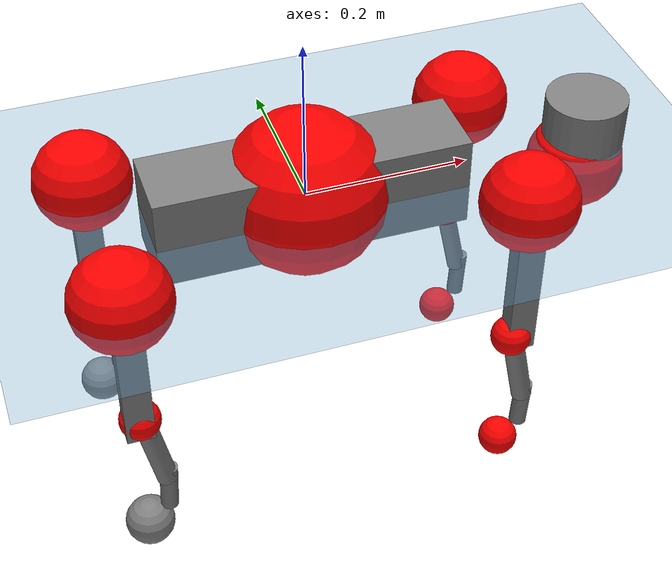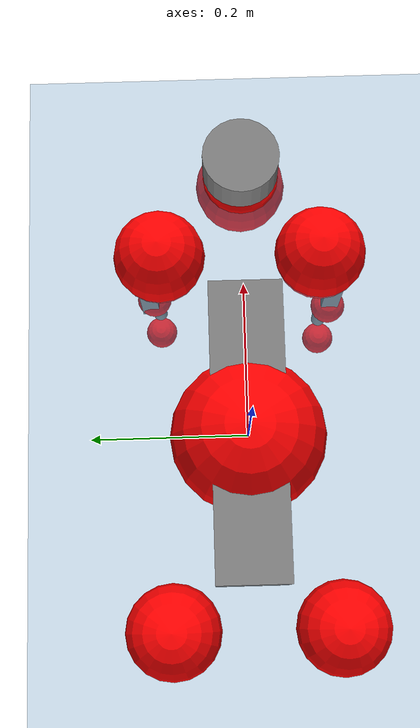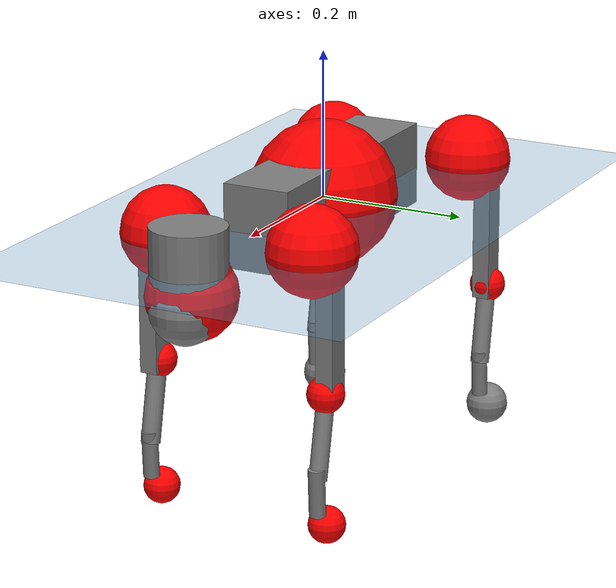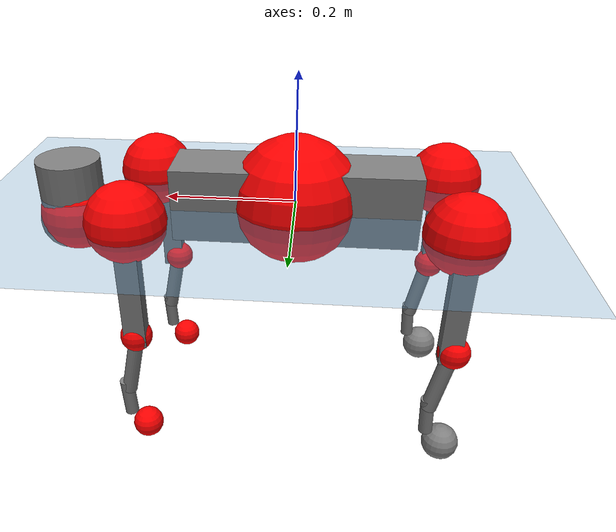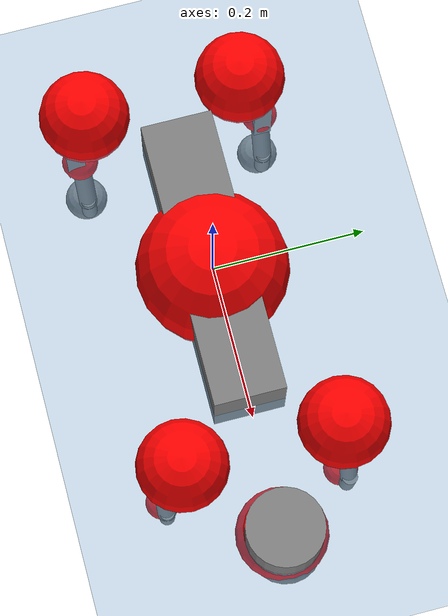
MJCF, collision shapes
<mujoco model="go2">
  <compiler angle="radian" assetdir="assets" balanceinertia="true" inertiafromgeom="false"/>

  <option timestep="0.005" density="1.2" viscosity="2e-05"/>

  <size nkey="1"/>

  <visual>
    <quality shadowsize="8192"/>
    <map shadowclip="0.5"/>
  </visual>

  <default>
    <default class="/">
      <geom contype="0" conaffinity="0" group="1" solref="-1000 -80"/>
      <site size="0.01 0.005 0.005" group="5"/>
      <general forcelimited="true" biastype="affine" gainprm="20" biasprm="0 -20 -0.5"/>
      <default class="go2">
        <joint armature="0.01" damping="0.01" frictionloss="0.2"/>
        <geom condim="1" margin="0.001"/>
        <default class="visual">
          <geom type="mesh" group="2"/>
        </default>
        <default class="collision">
          <geom group="3"/>
          <default class="foot">
            <geom size="0.022 0 0" condim="6" priority="1" friction="0.8 0.02 0.01" solimp="0.015 1 0.022"/>
          </default>
        </default>
        <default class="reward_collision_sphere">
          <geom group="5" rgba="1 0 0 1"/>
        </default>
      </default>
    </default>
  </default>

  <asset>
    <texture type="skybox" colorspace="auto" name="//unnamed_texture_0" builtin="gradient" rgb1="0.95 0.95 0.95" rgb2="0.95 0.95 0.95" width="100" height="600"/>
    <texture type="2d" colorspace="auto" name="texplane" builtin="checker" rgb1="0.345 0.575 0.748" rgb2="0.345 0.575 0.748" markrgb="1 1 1" width="512" height="512"/>
    <material name="MatPlane" class="/" texture="texplane" texuniform="true" texrepeat="2 2" specular="0.9"/>
    <material name="metal" class="/" rgba="0.9 0.95 0.95 1"/>
    <material name="black" class="/" rgba="0 0 0 1"/>
    <material name="white" class="/"/>
    <material name="gray" class="/" rgba="0.671705 0.692426 0.77427 1"/>
    <mesh name="base_0" class="/" file="base_0.obj"/>
    <mesh name="base_1" class="/" file="base_1.obj"/>
    <mesh name="base_2" class="/" file="base_2.obj"/>
    <mesh name="base_3" class="/" file="base_3.obj"/>
    <mesh name="base_4" class="/" file="base_4.obj"/>
    <mesh name="hip_0" class="/" file="hip_0.obj"/>
    <mesh name="hip_1" class="/" file="hip_1.obj"/>
    <mesh name="thigh_0" class="/" file="thigh_0.obj"/>
    <mesh name="thigh_1" class="/" file="thigh_1.obj"/>
    <mesh name="thigh_mirror_0" class="/" file="thigh_mirror_0.obj"/>
    <mesh name="thigh_mirror_1" class="/" file="thigh_mirror_1.obj"/>
    <mesh name="calf_0" class="/" file="calf_0.obj"/>
    <mesh name="calf_1" class="/" file="calf_1.obj"/>
    <mesh name="calf_mirror_0" class="/" file="calf_mirror_0.obj"/>
    <mesh name="calf_mirror_1" class="/" file="calf_mirror_1.obj"/>
    <mesh name="foot" class="/" file="foot.obj"/>
  </asset>

  <worldbody>
    <geom name="floor" class="/" size="100 100 0.125" type="plane" group="0" material="MatPlane"/>
    <light name="toplight_shadow" class="/" pos="0 0 5" dir="0.0990148 0.0990148 -0.990148" type="directional" ambient="0.04 0.04 0.04" diffuse="0.55 0.55 0.55" specular="0.12 0.12 0.12"/>
    <light name="toplight_fill" class="/" pos="0 0 5" dir="0.0990148 0.0990148 -0.990148" type="directional" castshadow="false" ambient="0.04 0.04 0.04" diffuse="0.3 0.3 0.3" specular="0.08 0.08 0.08"/>
    <body name="trunk" childclass="go2" pos="-0.000511329 0.000154841 0.00526729" quat="1 0.00042413 0.000144387 -0.000787135">
      <inertial pos="0.0281958 -0.00904568 -0.0107798" quat="-0.000676411 0.71337 -0.00192631 0.700784" mass="7.10699" diaginertia="0.296801 0.0607716 0.0105786"/>
      <joint name="//unnamed_joint_0" type="free" armature="0" damping="0" frictionloss="0"/>
      <geom name="//unnamed_geom_1" class="visual" material="black" mesh="base_0"/>
      <geom name="//unnamed_geom_2" class="visual" material="black" mesh="base_1"/>
      <geom name="//unnamed_geom_3" class="visual" material="black" mesh="base_2"/>
      <geom name="//unnamed_geom_4" class="visual" material="white" mesh="base_3"/>
      <geom name="//unnamed_geom_5" class="visual" material="gray" mesh="base_4"/>
      <geom name="trunk_1" class="collision" size="0.18725 0.0465386 0.0567423" type="box"/>
      <geom name="trunk_2" class="collision" size="0.0497739 0.0447965" pos="0.354315 0 0.00844353" type="cylinder"/>
      <geom name="trunk_3" class="collision" size="0.0467875" pos="0.364261 0 -0.0506612"/>
      <geom name="//unnamed_geom_9" class="reward_collision_sphere" size="0.0995479"/>
      <geom name="//unnamed_geom_10" class="reward_collision_sphere" size="0.0597287" pos="0.348099 0 -0.0379959"/>
      <site name="imu" pos="-0.0367384 0.0166425 0.0291149" size="0.00995479"/>
      <camera name="track" pos="0 -1.79774 0" quat="0.707107 0.707107 0 0" mode="trackcom"/>
      <camera name="ego_camera" pos="0.387882 0 0.0379959" quat="-0.5 -0.5 0.5 0.5"/>
      <body name="FL_hip" pos="0.237625 0.0461266 0.00336382" quat="1 8.75467e-09 2.47529e-08 6.79347e-09">
        <inertial pos="0.000725408 -7.0247e-05 0.00291387" quat="0.494927 0.502146 0.501072 0.50182" mass="0.671671" diaginertia="0.00262854 0.000364951 0.000197632"/>
        <joint name="FL_hip_joint" pos="0 0 0" axis="0.999999 -0.00092504 0.00122602" stiffness="0.00122411" range="-1.0074 1.04212" armature="0.00775874" damping="0" frictionloss="0.268176"/>
        <geom name="//unnamed_geom_11" class="visual" material="metal" mesh="hip_0"/>
        <geom name="//unnamed_geom_12" class="visual" material="gray" mesh="hip_1"/>
        <geom name="//unnamed_geom_13" class="collision" size="0.045792 0.0199096" pos="0 0.0719098 0" quat="0.707107 0.707107 0 0" type="cylinder"/>
        <geom name="//unnamed_geom_14" class="reward_collision_sphere" size="0.0597287" pos="0 0.062921 0"/>
        <body name="FL_thigh" pos="-0.00327561 0.0858718 -0.00176252" quat="1 4.73165e-05 -3.59801e-05 7.29438e-05">
          <inertial pos="-0.00647325 -0.0207051 -0.0243955" quat="0.831305 0.0904668 -0.0136166 0.548236" mass="1.25036" diaginertia="0.0172866 0.00347173 0.000464399"/>
          <joint name="FL_thigh_joint" pos="0 0 0" axis="-0.0092334 0.999935 0.00672691" stiffness="0.00433984" range="-1.48097 3.45099" armature="0.00971104" damping="0.01936" frictionloss="0.216399"/>
          <geom name="//unnamed_geom_15" class="visual" material="metal" mesh="thigh_0"/>
          <geom name="//unnamed_geom_16" class="visual" material="gray" mesh="thigh_1"/>
          <geom name="//unnamed_geom_17" class="collision" size="0.106018 0.0121946 0.0169231" pos="0 0 -0.0899236" quat="0.707107 0 0.707107 0" type="box"/>
          <body name="FL_calf" pos="0.00183295 -0.00506229 -0.185704" quat="0.999991 -0.000455239 0.00145756 0.0039806">
            <inertial pos="0.00596418 -0.00069752 -0.119563" quat="0.710259 0.000918479 -0.00207104 0.703936" mass="0.258911" diaginertia="0.00438708 0.000892322 2.50095e-05"/>
            <joint name="FL_calf_joint" pos="0 0 0" axis="-0.000425329 0.999997 0.00251151" stiffness="0.00868033" range="-2.69453 -0.856833" armature="0.0111566" damping="0" frictionloss="0.251829"/>
            <geom name="//unnamed_geom_18" class="visual" material="gray" mesh="calf_0"/>
            <geom name="//unnamed_geom_19" class="visual" material="black" mesh="calf_1"/>
            <geom name="FL_calf0" class="collision" size="0.0119457 0.0597287" pos="0.00994569 0 -0.0506612" quat="0.994493 0 -0.104807 0" type="cylinder"/>
            <geom name="//unnamed_geom_21" class="collision" size="0.0109503 0.0323531" pos="0.0248642 0 -0.124964" quat="0.999688 0 0.0249974 0" type="cylinder"/>
            <geom name="//unnamed_geom_22" class="visual" pos="0 0 -0.179847" quat="1 0 0 0" material="black" mesh="foot"/>
            <geom name="FL_foot" class="foot" size="0.0157122" pos="-0.00248642 0 -0.179847"/>
            <geom name="//unnamed_geom_24" class="reward_collision_sphere" size="0.024887"/>
            <geom name="//unnamed_geom_25" class="reward_collision_sphere" size="0.024887" pos="-0.00248642 0 -0.179847"/>
            <site name="FL_foot" class="foot" pos="-0.00248642 0 -0.179847" size="0.00995479"/>
          </body>
        </body>
      </body>
      <body name="FR_hip" pos="0.239773 -0.0382786 -0.00130873" quat="0.999995 -0.00190433 0.00174944 -0.00205784">
        <inertial pos="-0.00602912 -0.000591847 -0.00143416" quat="0.496267 0.504213 0.498615 0.500871" mass="0.730913" diaginertia="0.00281842 0.000397588 0.0002036"/>
        <joint name="FR_hip_joint" pos="0 0 0" axis="0.999892 0.00757058 0.0125757" range="-1.17043 1.2158" armature="0.00911743" damping="0.00708685" frictionloss="0.242601"/>
        <geom name="//unnamed_geom_26" class="visual" pos="0 4.74946e-10 2.03714e-08" quat="4.63268e-05 1 0 0" material="metal" mesh="hip_0"/>
        <geom name="//unnamed_geom_27" class="visual" pos="0 7.69945e-10 -5.03863e-08" quat="4.63268e-05 1 0 0" material="gray" mesh="hip_1"/>
        <geom name="//unnamed_geom_28" class="collision" size="0.045792 0.0199096" pos="0 -0.0719098 0" quat="0.707107 0.707107 0 0" type="cylinder"/>
        <geom name="//unnamed_geom_29" class="reward_collision_sphere" size="0.0597287" pos="0 -0.062921 0"/>
        <body name="FR_thigh" pos="-0.0097667 -0.0896418 -0.00115839" quat="1 -0.000176715 -5.49653e-05 7.16088e-05">
          <inertial pos="-0.0019189 0.0186053 -0.0276882" quat="0.554326 -0.0183838 0.0851459 0.827729" mass="1.02652" diaginertia="0.0170663 0.00306874 0.000332764"/>
          <joint name="FR_thigh_joint" pos="0 0 0" axis="-0.0193038 -0.998986 0.0406738" range="-3.69716 1.74" armature="0.0107479" damping="0.0360524" frictionloss="0.195337"/>
          <geom name="//unnamed_geom_30" class="visual" material="metal" mesh="thigh_mirror_0"/>
          <geom name="//unnamed_geom_31" class="visual" material="gray" mesh="thigh_mirror_1"/>
          <geom name="//unnamed_geom_32" class="collision" size="0.106018 0.0121946 0.0169231" pos="0 0 -0.0899236" quat="0.707107 0 0.707107 0" type="box"/>
          <body name="FR_calf" pos="-0.00871942 0.000419229 -0.1829" quat="1 -0.000294474 -0.000303608 -7.01429e-05">
            <inertial pos="0.00932334 0.000175283 -0.129044" quat="0.702675 -0.00470172 0.00265787 0.711491" mass="0.272026" diaginertia="0.00424831 0.000846629 2.24884e-05"/>
            <joint name="FR_calf_joint" pos="0 0 0" axis="-0.0369882 -0.998574 -0.0384946" stiffness="0.00720885" range="0.83322 2.86057" armature="0.0100017" damping="0.0128551" frictionloss="0.302069"/>
            <geom name="//unnamed_geom_33" class="visual" material="gray" mesh="calf_mirror_0"/>
            <geom name="//unnamed_geom_34" class="visual" material="black" mesh="calf_mirror_1"/>
            <geom name="FR_calf0" class="collision" size="0.0129412 0.0597287" pos="0.0124321 0 -0.0506612" quat="0.995004 0 -0.0998334 0" type="cylinder"/>
            <geom name="//unnamed_geom_36" class="collision" size="0.0109503 0.0323531" pos="0.0248642 0 -0.124964" quat="0.999688 0 0.0249974 0" type="cylinder"/>
            <geom name="//unnamed_geom_37" class="visual" pos="0 0 -0.179847" quat="1 0 0 0" material="black" mesh="foot"/>
            <geom name="FR_foot" class="foot" size="0.0222048" pos="-0.00248642 0 -0.179847"/>
            <geom name="//unnamed_geom_39" class="reward_collision_sphere" size="0.024887"/>
            <geom name="//unnamed_geom_40" class="reward_collision_sphere" size="0.024887" pos="-0.00248642 0 -0.179847"/>
            <site name="FR_foot" class="foot" pos="-0.00248642 0 -0.179847" size="0.00995479"/>
          </body>
        </body>
      </body>
      <body name="RL_hip" pos="-0.241142 0.0361147 0.000268599" quat="0.999999 0.00103844 -0.000286832 0.000275788">
        <inertial pos="0.00941718 0.00889095 0.0011261" quat="0.532058 0.496472 0.45215 0.515742" mass="0.760124" diaginertia="0.00260351 0.000330849 0.000212146"/>
        <joint name="RL_hip_joint" pos="0 0 0" axis="-0.999665 -0.0162848 0.0201008" stiffness="0.0302711" range="-1.03913 1.10154" armature="0.00986247" damping="0.0290193" frictionloss="0.16976"/>
        <geom name="//unnamed_geom_41" class="visual" pos="-3.47469e-09 0 -6.81118e-07" quat="4.63268e-05 0 1 0" material="metal" mesh="hip_0"/>
        <geom name="//unnamed_geom_42" class="visual" pos="-5.63288e-09 0 -6.04055e-07" quat="4.63268e-05 0 1 0" material="gray" mesh="hip_1"/>
        <geom name="//unnamed_geom_43" class="collision" size="0.045792 0.0199096" pos="0 0.0719098 0" quat="0.707107 0.707107 0 0" type="cylinder"/>
        <geom name="//unnamed_geom_44" class="reward_collision_sphere" size="0.0597287" pos="0 0.062921 0"/>
        <body name="RL_thigh" pos="0.000515835 0.0929569 -0.000832845" quat="0.999999 -0.000373358 0.000571977 0.00139708">
          <inertial pos="-0.00366073 -0.0148942 -0.0273765" quat="0.830571 0.09112 -0.0172224 0.549137" mass="1.09751" diaginertia="0.0155715 0.0031888 0.000325384"/>
          <joint name="RL_thigh_joint" pos="0 0 0" axis="-0.000640882 0.999999 -0.000806259" range="-0.509986 4.53805" armature="0.0104638" damping="0.0123862" frictionloss="0.194623"/>
          <geom name="//unnamed_geom_45" class="visual" material="metal" mesh="thigh_0"/>
          <geom name="//unnamed_geom_46" class="visual" material="gray" mesh="thigh_1"/>
          <geom name="//unnamed_geom_47" class="collision" size="0.106018 0.0121946 0.0169231" pos="0 0 -0.0899236" quat="0.707107 0 0.707107 0" type="box"/>
          <body name="RL_calf" pos="-0.00592004 0.00100466 -0.18073" quat="0.999994 0.00320063 0.000794083 0.000724158">
            <inertial pos="0.0017086 0.00034208 -0.114534" quat="0.711069 0.0009411 -0.00583178 0.703097" mass="0.225388" diaginertia="0.00384744 0.000664867 1.70039e-05"/>
            <joint name="RL_calf_joint" pos="0 0 0" axis="0.0213581 0.999768 0.00271132" stiffness="0.00757321" range="-2.71298 -0.617616" armature="0.0100814" damping="0" frictionloss="0.173126"/>
            <geom name="//unnamed_geom_48" class="visual" material="gray" mesh="calf_0"/>
            <geom name="//unnamed_geom_49" class="visual" material="black" mesh="calf_1"/>
            <geom name="RL_calf0" class="collision" size="0.0129412 0.0597287" pos="0.0124321 0 -0.0506612" quat="0.995004 0 -0.0998334 0" type="cylinder"/>
            <geom name="//unnamed_geom_51" class="collision" size="0.0109503 0.0323531" pos="0.0248642 0 -0.124964" quat="0.999688 0 0.0249974 0" type="cylinder"/>
            <geom name="//unnamed_geom_52" class="visual" pos="0 0 -0.179847" quat="1 0 0 0" material="black" mesh="foot"/>
            <geom name="RL_foot" class="foot" size="0.0290721" pos="-0.00248642 0 -0.179847"/>
            <geom name="//unnamed_geom_54" class="reward_collision_sphere" size="0.024887"/>
            <geom name="//unnamed_geom_55" class="reward_collision_sphere" size="0.024887" pos="-0.00248642 0 -0.179847"/>
            <site name="RL_foot" class="foot" pos="-0.00248642 0 -0.179847" size="0.00995479"/>
          </body>
        </body>
      </body>
      <body name="RR_hip" pos="-0.240985 -0.0477739 -0.0056175" quat="0.999993 0.000222639 0.000776493 -0.00364287">
        <inertial pos="0.00726057 -0.00435713 0.00202918" quat="0.514426 0.505563 0.453466 0.523584" mass="0.707689" diaginertia="0.00263022 0.000382196 0.000218985"/>
        <joint name="RR_hip_joint" pos="0 0 0" axis="-0.999992 0.00214263 -0.00333568" stiffness="0.0037644" range="-0.902555 1.05474" armature="0.0141144" damping="0.0260703" frictionloss="0.15724"/>
        <geom name="//unnamed_geom_56" class="visual" pos="3.46276e-09 4.74946e-10 -7.0149e-07" quat="2.14617e-09 4.63268e-05 4.63268e-05 -1" material="metal" mesh="hip_0"/>
        <geom name="//unnamed_geom_57" class="visual" pos="5.66237e-09 7.69945e-10 -5.53669e-07" quat="2.14617e-09 4.63268e-05 4.63268e-05 -1" material="gray" mesh="hip_1"/>
        <geom name="//unnamed_geom_58" class="collision" size="0.045792 0.0199096" pos="0 -0.0719098 0" quat="0.707107 0.707107 0 0" type="cylinder"/>
        <geom name="//unnamed_geom_59" class="reward_collision_sphere" size="0.0597287" pos="0 -0.062921 0"/>
        <body name="RR_thigh" pos="-0.00105428 -0.085753 0.00904329" quat="1 0.000315035 -3.67594e-06 0.000346337">
          <inertial pos="-0.00458333 0.00947993 -0.0311629" quat="0.541316 0.00307175 0.0683827 0.838028" mass="1.28248" diaginertia="0.0195146 0.00379699 0.00041729"/>
          <joint name="RR_thigh_joint" pos="0 0 0" axis="0.0111274 -0.999779 0.0178124" range="-4.57378 0.694995" armature="0.00430172" damping="0" frictionloss="0.193291"/>
          <geom name="//unnamed_geom_60" class="visual" material="metal" mesh="thigh_mirror_0"/>
          <geom name="//unnamed_geom_61" class="visual" material="gray" mesh="thigh_mirror_1"/>
          <geom name="//unnamed_geom_62" class="collision" size="0.106018 0.0121946 0.0169231" pos="0 0 -0.0899236" quat="0.707107 0 0.707107 0" type="box"/>
          <body name="RR_calf" pos="0.00297894 0.00633639 -0.180071" quat="0.999996 -0.00126075 0.00248397 -0.000148176">
            <inertial pos="0.00508056 -0.0012372 -0.121047" quat="0.710675 -0.0325412 -0.0338671 0.701951" mass="0.271582" diaginertia="0.0046307 0.000894549 2.04793e-05"/>
            <joint name="RR_calf_joint" pos="0 0 0" axis="0.0372055 -0.999184 -0.0157444" range="0.709483 2.56622" armature="0.00909924" damping="0" frictionloss="0.212077"/>
            <geom name="//unnamed_geom_63" class="visual" material="gray" mesh="calf_mirror_0"/>
            <geom name="//unnamed_geom_64" class="visual" material="black" mesh="calf_mirror_1"/>
            <geom name="RR_calf0" class="collision" size="0.0129412 0.0597287" pos="0.0124321 0 -0.0506612" quat="0.995004 0 -0.0998334 0" type="cylinder"/>
            <geom name="//unnamed_geom_66" class="collision" size="0.0109503 0.0323531" pos="0.0248642 0 -0.124964" quat="0.999688 0 0.0249974 0" type="cylinder"/>
            <geom name="//unnamed_geom_67" class="visual" pos="0 0 -0.179847" quat="1 0 0 0" material="black" mesh="foot"/>
            <geom name="RR_foot" class="foot" size="0.0303423" pos="-0.00248642 0 -0.179847"/>
            <geom name="//unnamed_geom_69" class="reward_collision_sphere" size="0.024887"/>
            <geom name="//unnamed_geom_70" class="reward_collision_sphere" size="0.024887" pos="-0.00248642 0 -0.179847"/>
            <site name="RR_foot" class="foot" pos="-0.00248642 0 -0.179847" size="0.00995479"/>
          </body>
        </body>
      </body>
    </body>
  </worldbody>

  <contact>
    <pair class="/" geom1="floor" geom2="FL_foot" name="//unnamed_contact_0"/>
    <pair class="/" geom1="floor" geom2="FR_foot" name="//unnamed_contact_1"/>
    <pair class="/" geom1="floor" geom2="RL_foot" name="//unnamed_contact_2"/>
    <pair class="/" geom1="floor" geom2="RR_foot" name="//unnamed_contact_3"/>
  </contact>

  <actuator>
    <general name="FL_hip" class="/" joint="FL_hip_joint" forcerange="-26.6638 26.6638" gainprm="15.5735" biasprm="0 -15.5735 -0.474363"/>
    <general name="FL_thigh" class="/" joint="FL_thigh_joint" forcerange="-32.6513 32.6513" gainprm="15.5735" biasprm="0 -15.5735 -0.474363"/>
    <general name="FL_calf" class="/" joint="FL_calf_joint" forcerange="-45.2661 45.2661" gainprm="15.5735" biasprm="0 -15.5735 -0.474363"/>
    <general name="FR_hip" class="/" joint="FR_hip_joint" forcerange="-24.0156 24.0156" gainprm="15.5735" biasprm="0 -15.5735 -0.474363"/>
    <general name="FR_thigh" class="/" joint="FR_thigh_joint" forcerange="-22.6351 22.6351" gainprm="15.5735" biasprm="0 -15.5735 -0.474363"/>
    <general name="FR_calf" class="/" joint="FR_calf_joint" forcerange="-49.0771 49.0771" gainprm="15.5735" biasprm="0 -15.5735 -0.474363"/>
    <general name="RL_hip" class="/" joint="RL_hip_joint" forcerange="-19.4729 19.4729" gainprm="15.5735" biasprm="0 -15.5735 -0.474363"/>
    <general name="RL_thigh" class="/" joint="RL_thigh_joint" forcerange="-23.6024 23.6024" gainprm="15.5735" biasprm="0 -15.5735 -0.474363"/>
    <general name="RL_calf" class="/" joint="RL_calf_joint" forcerange="-50.3791 50.3791" gainprm="15.5735" biasprm="0 -15.5735 -0.474363"/>
    <general name="RR_hip" class="/" joint="RR_hip_joint" forcerange="-32.435 32.435" gainprm="15.5735" biasprm="0 -15.5735 -0.474363"/>
    <general name="RR_thigh" class="/" joint="RR_thigh_joint" forcerange="-22.7626 22.7626" gainprm="15.5735" biasprm="0 -15.5735 -0.474363"/>
    <general name="RR_calf" class="/" joint="RR_calf_joint" forcerange="-44.4781 44.4781" gainprm="15.5735" biasprm="0 -15.5735 -0.474363"/>
  </actuator>

  <sensor>
    <gyro site="imu" name="imu_angular_velocity"/>
    <velocimeter site="imu" name="imu_linear_velocity"/>
    <framelinvel objtype="site" objname="FL_foot" name="FL_foot_global_linear_velocity"/>
    <framelinvel objtype="site" objname="FR_foot" name="FR_foot_global_linear_velocity"/>
    <framelinvel objtype="site" objname="RL_foot" name="RL_foot_global_linear_velocity"/>
    <framelinvel objtype="site" objname="RR_foot" name="RR_foot_global_linear_velocity"/>
  </sensor>

  <keyframe>
    <key name="home" qpos="0 0 0.325 1 0 0 0 0.1 0.8 -1.5 -0.1 -0.8 1.5 -0.1 0.8 -1.5 0.1 -0.8 1.5"/>
  </keyframe>
</mujoco>
